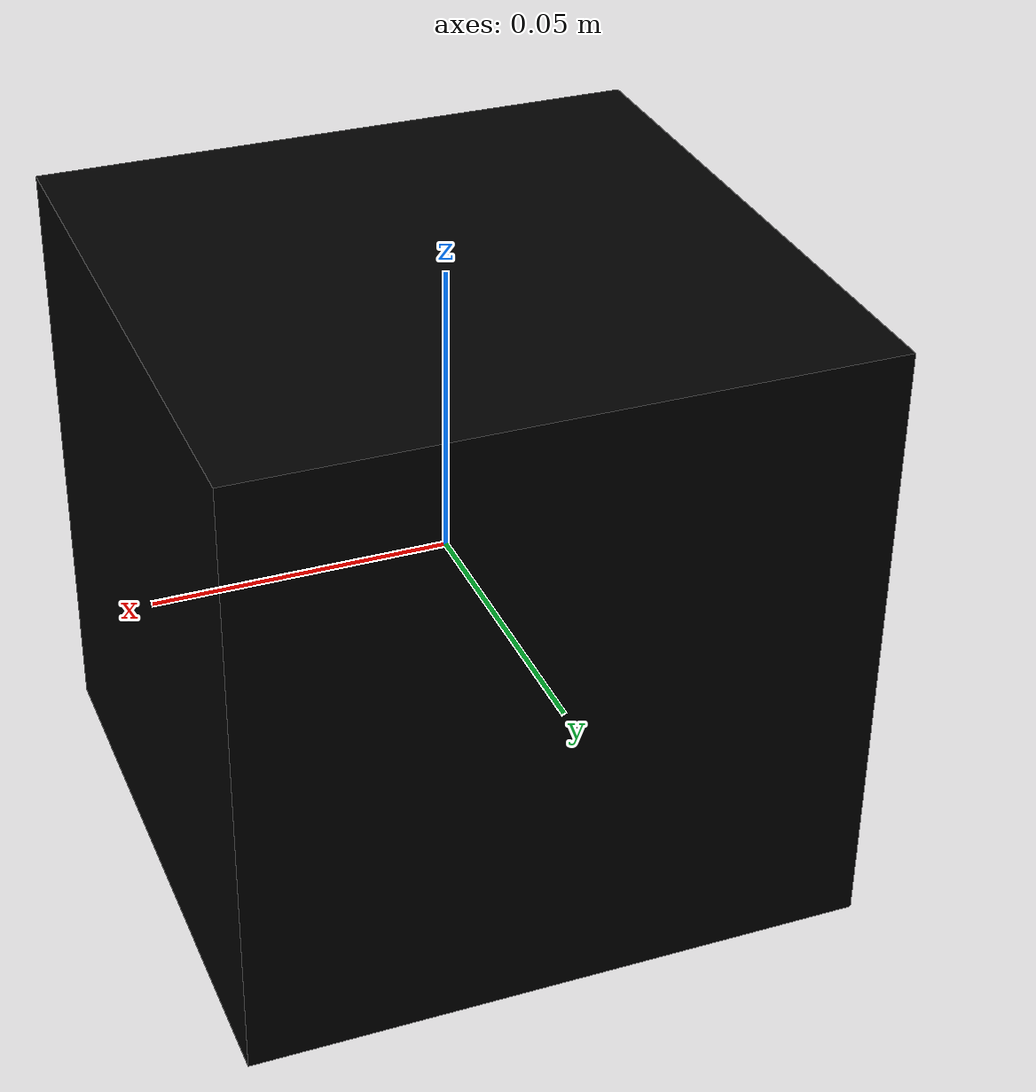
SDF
<?xml version="1.0"?>
<sdf version="1.7">
  <model name="t_shape">
    <link name="vertical_link">
      <inertial>
        <pose>0 0 0 0 0 0</pose>
        <mass>1</mass>
        <!-- Inertia values were calculated to be consistent with the mass and
             geometry size, assuming a uniform density. -->
        <inertia>
            <ixx>0.003</ixx>
            <iyy>0.003 </iyy>
            <izz>0.007 </izz>
            <ixy>0.0</ixy>
            <ixz>0.0</ixz>
            <iyz>0.0</iyz>
        </inertia>
      </inertial>

      <visual name="vertical_link">
        <pose>0 0 0 0 0 0</pose>
        <geometry>
          <mesh>
            <uri>contactnets_cube.obj</uri>
          </mesh>
        </geometry>
        <material>
          <diffuse>0 0 0 1</diffuse>
        </material>
      </visual>
      <collision name="vertical_link_volume">
        <pose>0 0 0 0 0 0</pose>
            <geometry>
          <mesh>
            <uri>contactnets_cube.obj</uri>
          </mesh>
        </geometry>
        <drake:proximity_properties>
          <drake:compliant_hydroelastic/>
          <drake:hydroelastic_modulus> 3.0e7 </drake:hydroelastic_modulus>
          <drake:mesh_resolution_hint> 0.18 </drake:mesh_resolution_hint>
          <drake:hunt_crossley_dissipation>10</drake:hunt_crossley_dissipation>
          <drake:mu_dynamic>0.3</drake:mu_dynamic>
        </drake:proximity_properties>
      </collision>
      <collision name="CORNER_XMAX">
        <geometry>
          <sphere>
            <radius>0.001</radius>
          </sphere>
        </geometry>
        <drake:proximity_properties>
        <drake:mu_dynamic>0.3</drake:mu_dynamic>
        </drake:proximity_properties>
        <pose> 0.05240000 -0.05240000 -0.05240000 0 0 0</pose>
      </collision>
      <collision name="CORNER_XMIN">
        <geometry>
          <sphere>
            <radius>0.001</radius>
          </sphere>
        </geometry>
        <drake:proximity_properties>
        <drake:mu_dynamic>0.3</drake:mu_dynamic>
        </drake:proximity_properties>
        <pose> -0.05240000 -0.05240000 -0.05240000 0 0 0</pose>
      </collision>
      <collision name="CORNER_YMAX">
        <geometry>
          <sphere>
            <radius>0.001</radius>
          </sphere>
        </geometry>
        <drake:proximity_properties>
        <drake:mu_dynamic>0.3</drake:mu_dynamic>
        </drake:proximity_properties>
        <pose> -0.05240000 0.05240000 -0.05240000 0 0 0</pose>
      </collision>
      <collision name="CORNER_YMIN">
        <geometry>
          <sphere>
            <radius>0.001</radius>
          </sphere>
        </geometry>
        <drake:proximity_properties>
        <drake:mu_dynamic>0.3</drake:mu_dynamic>
        </drake:proximity_properties>
        <pose> -0.05240000 -0.05240000 -0.05240000 0 0 0</pose>
      </collision>
    </link>
  </model>
</sdf>
